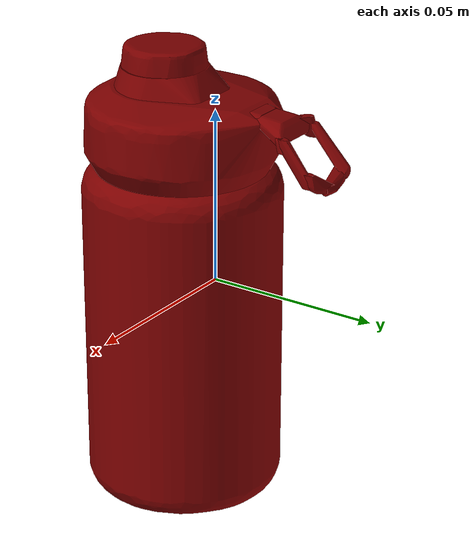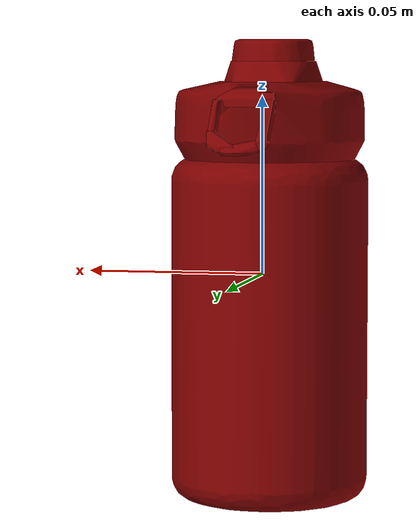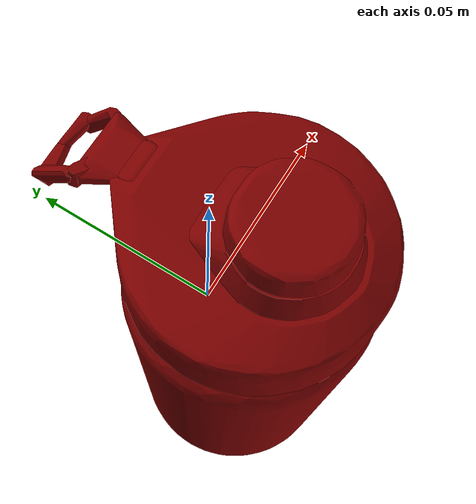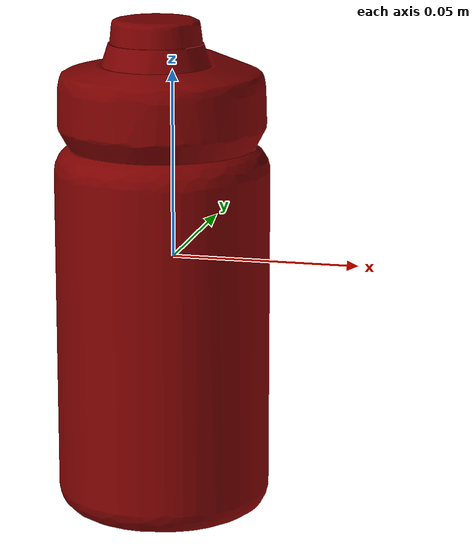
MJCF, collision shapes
<?xml version='1.0' encoding='utf-8'?>
<mujoco model="water_bottle_25">
  <asset>
    <mesh file="visual/model_normalized_0.obj" name="model_normalized_0_vis" scale="0.13 0.13 0.13" refquat="5.551115123125783e-17 0.0 0.0 0.9999999999999998" />
    <mesh file="visual/model_normalized_1.obj" name="model_normalized_1_vis" scale="0.13 0.13 0.13" refquat="5.551115123125783e-17 0.0 0.0 0.9999999999999998" />
    <mesh file="visual/model_normalized_2.obj" name="model_normalized_2_vis" scale="0.13 0.13 0.13" refquat="5.551115123125783e-17 0.0 0.0 0.9999999999999998" />
    <mesh file="visual/model_normalized_3.obj" name="model_normalized_3_vis" scale="0.13 0.13 0.13" refquat="5.551115123125783e-17 0.0 0.0 0.9999999999999998" />
    <texture type="2d" name="image0" file="visual/image0.png" />
    <material name="Black_Plastic" texture="image0" specular="0.5" shininess="0.0" />
    <material name="Car_paint_matt_rough" specular="0.5" shininess="0.25" rgba="0.052914 0.197754 0.505454 1.0" />
    <material name="Elastic_Rubber" texture="image0" specular="0.5" shininess="0.41661216100000004" />
    <material name="Metal" texture="image0" specular="0.5" shininess="0.25" />
    <mesh file="collision/collision_mesh_collision_0.obj" name="water_collision_mesh_0" scale="0.13 0.13 0.13" refquat="5.551115123125783e-17 0.0 0.0 0.9999999999999998" />
    <mesh file="collision/collision_mesh_collision_1.obj" name="water_collision_mesh_1" scale="0.13 0.13 0.13" refquat="5.551115123125783e-17 0.0 0.0 0.9999999999999998" />
    <mesh file="collision/collision_mesh_collision_2.obj" name="water_collision_mesh_2" scale="0.13 0.13 0.13" refquat="5.551115123125783e-17 0.0 0.0 0.9999999999999998" />
    <mesh file="collision/collision_mesh_collision_3.obj" name="water_collision_mesh_3" scale="0.13 0.13 0.13" refquat="5.551115123125783e-17 0.0 0.0 0.9999999999999998" />
    <mesh file="collision/collision_mesh_collision_4.obj" name="water_collision_mesh_4" scale="0.13 0.13 0.13" refquat="5.551115123125783e-17 0.0 0.0 0.9999999999999998" />
    <mesh file="collision/collision_mesh_collision_5.obj" name="water_collision_mesh_5" scale="0.13 0.13 0.13" refquat="5.551115123125783e-17 0.0 0.0 0.9999999999999998" />
    <mesh file="collision/collision_mesh_collision_6.obj" name="water_collision_mesh_6" scale="0.13 0.13 0.13" refquat="5.551115123125783e-17 0.0 0.0 0.9999999999999998" />
    <mesh file="collision/collision_mesh_collision_7.obj" name="water_collision_mesh_7" scale="0.13 0.13 0.13" refquat="5.551115123125783e-17 0.0 0.0 0.9999999999999998" />
    <mesh file="collision/collision_mesh_collision_8.obj" name="water_collision_mesh_8" scale="0.13 0.13 0.13" refquat="5.551115123125783e-17 0.0 0.0 0.9999999999999998" />
    <mesh file="collision/collision_mesh_collision_9.obj" name="water_collision_mesh_9" scale="0.13 0.13 0.13" refquat="5.551115123125783e-17 0.0 0.0 0.9999999999999998" />
    <mesh file="collision/collision_mesh_collision_10.obj" name="water_collision_mesh_10" scale="0.13 0.13 0.13" refquat="5.551115123125783e-17 0.0 0.0 0.9999999999999998" />
    <mesh file="collision/collision_mesh_collision_11.obj" name="water_collision_mesh_11" scale="0.13 0.13 0.13" refquat="5.551115123125783e-17 0.0 0.0 0.9999999999999998" />
    <mesh file="collision/collision_mesh_collision_12.obj" name="water_collision_mesh_12" scale="0.13 0.13 0.13" refquat="5.551115123125783e-17 0.0 0.0 0.9999999999999998" />
    <mesh file="collision/collision_mesh_collision_13.obj" name="water_collision_mesh_13" scale="0.13 0.13 0.13" refquat="5.551115123125783e-17 0.0 0.0 0.9999999999999998" />
    <mesh file="collision/collision_mesh_collision_14.obj" name="water_collision_mesh_14" scale="0.13 0.13 0.13" refquat="5.551115123125783e-17 0.0 0.0 0.9999999999999998" />
    <mesh file="collision/collision_mesh_collision_15.obj" name="water_collision_mesh_15" scale="0.13 0.13 0.13" refquat="5.551115123125783e-17 0.0 0.0 0.9999999999999998" />
    </asset>
  <default>
    <default class="region">
      <geom group="1" conaffinity="0" contype="0" rgba="0 1 0 0" />
      </default>
    <default class="collision">
      <geom group="0" rgba="0.5 0 0 0.5" density="1000.0" />
      </default>
    </default>
  <worldbody>
    <body>
      <body name="object">
        <geom solimp="0.998 0.998 0.001" solref="0.001 1" density="100" friction="0.95 0.3 0.1" type="mesh" mesh="model_normalized_0_vis" conaffinity="0" contype="0" group="1" material="Elastic_Rubber" />
        <geom solimp="0.998 0.998 0.001" solref="0.001 1" density="100" friction="0.95 0.3 0.1" type="mesh" mesh="model_normalized_1_vis" conaffinity="0" contype="0" group="1" material="Metal" />
        <geom solimp="0.998 0.998 0.001" solref="0.001 1" density="100" friction="0.95 0.3 0.1" type="mesh" mesh="model_normalized_2_vis" conaffinity="0" contype="0" group="1" material="Black_Plastic" />
        <geom solimp="0.998 0.998 0.001" solref="0.001 1" density="100" friction="0.95 0.3 0.1" type="mesh" mesh="model_normalized_3_vis" conaffinity="0" contype="0" group="1" material="Car_paint_matt_rough" />
        <geom class="region" name="reg_bbox" type="box" pos="-0.0003459358087612341 -0.00040719635145840537 2.6000000000192536e-09" size="0.026638837624402716 0.037486464031264724 0.0650000026" />
        <geom mesh="water_collision_mesh_0" type="mesh" class="collision" />
        <geom mesh="water_collision_mesh_1" type="mesh" class="collision" />
        <geom mesh="water_collision_mesh_2" type="mesh" class="collision" />
        <geom mesh="water_collision_mesh_3" type="mesh" class="collision" />
        <geom mesh="water_collision_mesh_4" type="mesh" class="collision" />
        <geom mesh="water_collision_mesh_5" type="mesh" class="collision" />
        <geom mesh="water_collision_mesh_6" type="mesh" class="collision" />
        <geom mesh="water_collision_mesh_7" type="mesh" class="collision" />
        <geom mesh="water_collision_mesh_8" type="mesh" class="collision" />
        <geom mesh="water_collision_mesh_9" type="mesh" class="collision" />
        <geom mesh="water_collision_mesh_10" type="mesh" class="collision" />
        <geom mesh="water_collision_mesh_11" type="mesh" class="collision" />
        <geom mesh="water_collision_mesh_12" type="mesh" class="collision" />
        <geom mesh="water_collision_mesh_13" type="mesh" class="collision" />
        <geom mesh="water_collision_mesh_14" type="mesh" class="collision" />
        <geom mesh="water_collision_mesh_15" type="mesh" class="collision" />
        </body>
      </body>
    </worldbody>
  </mujoco>
